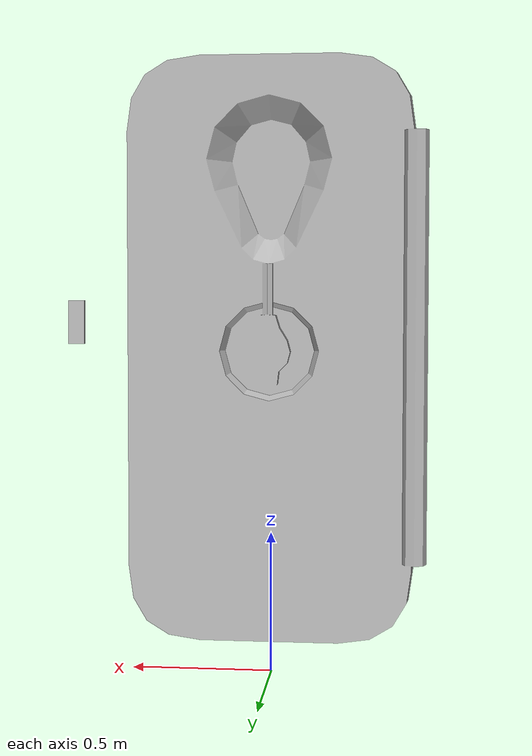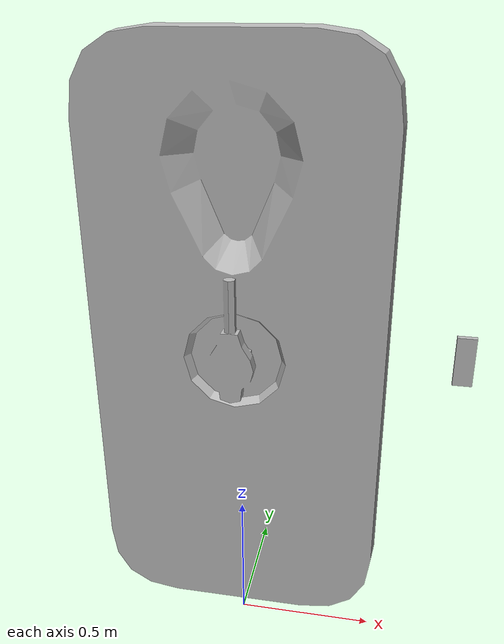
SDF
<?xml version="1.0" ?>
<sdf version="1.6">
  <model name="src_door">
    <pose>0 0 0 0 0 3.14159</pose>
    <!-- The door -->
    <link name="door">
      <pose>0 0 1 0 0 0</pose>

      <!-- m = (0.7*0.19*2.03)*2700 = 2873 Kg -->
      <inertial>
        <pose>0 0 0.14 0 0 0</pose>
        <mass>182</mass>
        <inertia>
          <ixx>63.04</ixx>
          <ixy>0</ixy>
          <ixz>0</ixz>
          <iyy>69.932</iyy>
          <iyz>0</iyz>
          <izz>7.979</izz>
        </inertia>
      </inertial>

      <collision name="center">
        <pose>0 0 0.14 0 0 0</pose>
        <geometry>
          <box>
            <size>0.7 0.19 2.03</size>
          </box>
        </geometry>
        <surface>
          <contact>
            <ode>
              <kp>1e16</kp>
              <kd>100.0</kd>
              <max_vel>1000.0</max_vel>
              <min_depth>0.001</min_depth>
            </ode>
          </contact>
          <friction>
            <ode>
              <mu>1.5</mu>
              <mu2>1.5</mu2>
            </ode>
          </friction>
        </surface>
      </collision>
      <collision name="left">
        <pose>-0.4 0 0.18 0 0 0</pose>
        <geometry>
          <box>
            <size>0.17 0.19 1.7</size>
          </box>
        </geometry>
        <surface>
          <contact>
            <ode>
              <kp>1e16</kp>
              <kd>100.0</kd>
              <max_vel>1000.0</max_vel>
              <min_depth>0.001</min_depth>
            </ode>
          </contact>
          <friction>
            <ode>
              <mu>1.5</mu>
              <mu2>1.5</mu2>
            </ode>
          </friction>
        </surface>
      </collision>
      <collision name="right">
        <pose>0.4 0 0.18 0 0 0</pose>
        <geometry>
          <box>
            <size>0.17 0.19 1.7</size>
          </box>
        </geometry>
        <surface>
          <contact>
            <ode>
              <kp>1e16</kp>
              <kd>100.0</kd>
              <max_vel>1000.0</max_vel>
              <min_depth>0.001</min_depth>
            </ode>
          </contact>
          <friction>
            <ode>
              <mu>1.5</mu>
              <mu2>1.5</mu2>
            </ode>
          </friction>
        </surface>
      </collision>
      <collision name="top_left">
        <pose>-0.36 0 1.04 1.57 0 0</pose>
        <geometry>
          <cylinder>
            <radius>0.1</radius>
            <length>0.18</length>
          </cylinder>
        </geometry>
        <surface>
          <contact>
            <ode>
              <kp>1e16</kp>
              <kd>100.0</kd>
              <max_vel>1000.0</max_vel>
              <min_depth>0.001</min_depth>
            </ode>
          </contact>
          <friction>
            <ode>
              <mu>1.5</mu>
              <mu2>1.5</mu2>
            </ode>
          </friction>
        </surface>
      </collision>
      <collision name="top_right">
        <pose>0.36 0 1.04 1.57 0 0</pose>
        <geometry>
          <cylinder>
            <radius>0.1</radius>
            <length>0.18</length>
          </cylinder>
        </geometry>
        <surface>
          <contact>
            <ode>
              <kp>1e16</kp>
              <kd>100.0</kd>
              <max_vel>1000.0</max_vel>
              <min_depth>0.001</min_depth>
            </ode>
          </contact>
          <friction>
            <ode>
              <mu>1.5</mu>
              <mu2>1.5</mu2>
            </ode>
          </friction>
        </surface>
      </collision>
      <collision name="bottom_left">
        <pose>-0.36 0 -0.73 1.57 0 0</pose>
        <geometry>
          <cylinder>
            <radius>0.1</radius>
            <length>0.18</length>
          </cylinder>
        </geometry>
        <surface>
          <contact>
            <ode>
              <kp>1e16</kp>
              <kd>100.0</kd>
              <max_vel>1000.0</max_vel>
              <min_depth>0.001</min_depth>
            </ode>
          </contact>
          <friction>
            <ode>
              <mu>1.5</mu>
              <mu2>1.5</mu2>
            </ode>
          </friction>
        </surface>
      </collision>
      <collision name="bottom_right">
        <pose>0.36 0 -0.73 1.57 0 0</pose>
        <geometry>
          <cylinder>
            <radius>0.1</radius>
            <length>0.18</length>
          </cylinder>
        </geometry>
        <surface>
          <contact>
            <ode>
              <kp>1e16</kp>
              <kd>100.0</kd>
              <max_vel>1000.0</max_vel>
              <min_depth>0.001</min_depth>
            </ode>
          </contact>
          <friction>
            <ode>
              <mu>1.5</mu>
              <mu2>1.5</mu2>
            </ode>
          </friction>
        </surface>
      </collision>

      <collision name="hinge">
        <pose>0.507 -0.135 0.17 0 0 0</pose>
        <geometry>
          <cylinder>
            <radius>0.038</radius>
            <length>1.48</length>
          </cylinder>
        </geometry>
        <surface>
          <contact>
            <ode>
              <kp>1e16</kp>
              <kd>100.0</kd>
              <max_vel>1000.0</max_vel>
              <min_depth>0.001</min_depth>
            </ode>
          </contact>
          <friction>
            <ode>
              <mu>1.5</mu>
              <mu2>1.5</mu2>
            </ode>
          </friction>
        </surface>
      </collision>

      <visual name="visual">
        <pose>0 0 -1 0 0 0</pose>
        <geometry>
          <mesh>
            <uri>model://src_door/meshes/doorway_door.dae</uri>
          </mesh>
        </geometry>
      </visual>
    </link>

    <!-- The button -->
    <link name="button">
      <pose>-0.735 0.15 1.247 0 0 0</pose>

      <inertial>
        <mass>0.2</mass>
        <inertia>
          <ixx>0.000432</ixx>
          <ixy>0</ixy>
          <ixz>0</ixz>
          <iyy>0.000487</iyy>
          <iyz>0</iyz>
          <izz>0.0000654</izz>
        </inertia>
      </inertial>

      <collision name="collision">
        <geometry>
          <box>
            <size>0.06 0.018 0.16</size>
          </box>
        </geometry>
        <surface>
          <contact>
            <ode>
              <kp>1e16</kp>
              <kd>100.0</kd>
              <max_vel>1000.0</max_vel>
              <min_depth>0.001</min_depth>
            </ode>
          </contact>
          <friction>
            <ode>
              <mu>1.5</mu>
              <mu2>1.5</mu2>
            </ode>
          </friction>
        </surface>
      </collision>

      <visual name="visual">
        <geometry>
          <box>
            <size>0.06 0.018 0.16</size>
          </box>
        </geometry>
        <material>
          <script>
            <uri>model://src_door/materials/scripts</uri>
            <uri>model://src_door/materials/textures</uri>
            <name>src_door_button/Diffuse</name>
          </script>
        </material>
      </visual>
    </link>

    <!-- Joint connecting the frame and the door -->
    <joint name="hinge" type="revolute">
      <parent>world</parent>
      <child>door</child>
      <pose>0.5 -0.14 0 0 0 0</pose>
      <axis>
        <xyz>0 0 1</xyz>
        <limit>
          <lower>0</lower>
          <upper>3</upper>
        </limit>
        <dynamics>
          <damping>1.0</damping>
          <friction>1.0</friction>
        </dynamics>
        <use_parent_model_frame>true</use_parent_model_frame>
      </axis>
      <physics>
        <ode>
          <cfm_damping>1</cfm_damping>
        </ode>
      </physics>
    </joint>

    <!-- Joint to make the button pushable -->
    <joint name="button_mechanism" type="prismatic">
      <parent>world</parent>
      <child>button</child>
      <pose>-0.735 0.15 1.247 0 0 0</pose>
      <axis>
        <xyz>0 1 0</xyz>
        <limit>
          <lower>-0.01</lower>
          <upper>0</upper>
        </limit>
        <dynamics>
          <damping>10</damping>
          <spring_stiffness>400</spring_stiffness>
          <spring_reference>0.002</spring_reference>
        </dynamics>
        <use_parent_model_frame>true</use_parent_model_frame>
      </axis>
      <physics>
        <ode>
          <cfm_damping>1</cfm_damping>
        </ode>
      </physics>
    </joint>
  </model>

</sdf>
